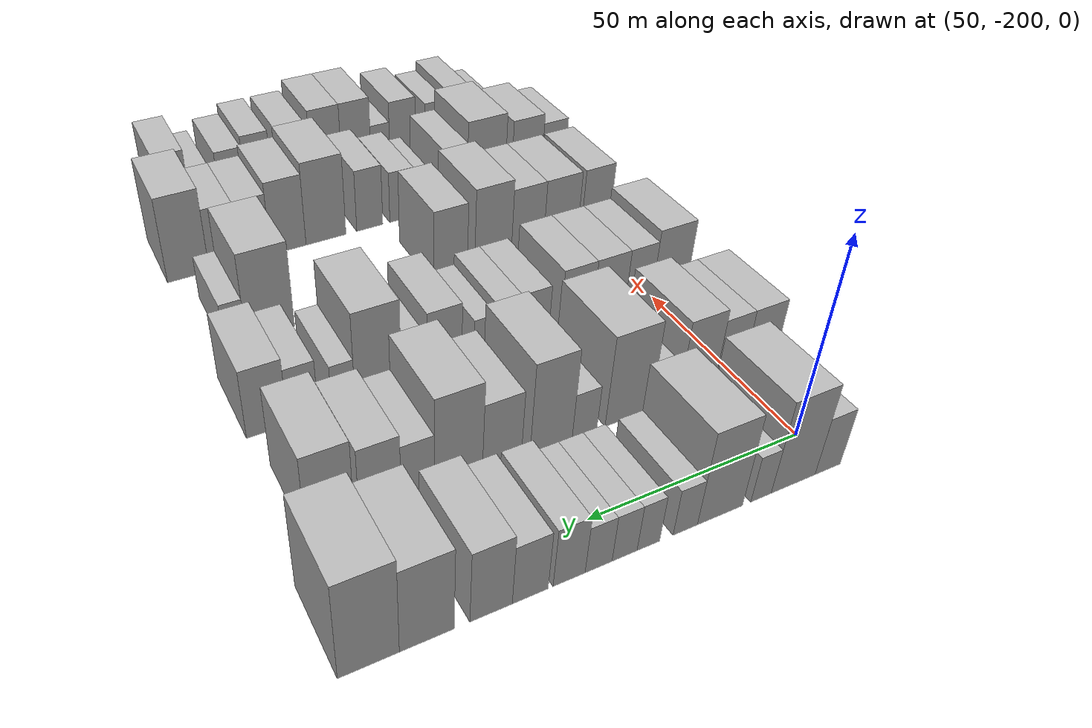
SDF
<sdf version="1.6">
 <world name="default">
  <model name="building_38">
   <static>1</static>
   <pose>50.0000 -199.1488 0 0.000000 0.000000 0.000000</pose>
   <link name="link">
    <pose>0 0 7.50 0 0 0</pose>
    <collision name="collision"><geometry><box><size>20.0000 6.4429 15.0000</size></box></geometry></collision>
    <visual name="visual">
     <cast_shadows>0</cast_shadows>
     <geometry><box><size>20.0000 6.4429 15.0000</size></box></geometry>
     <material>
      <script>
       <uri>model://HANNAS_wall/materials/scripts</uri>
       <uri>model://HANNAS_wall/materials/textures</uri>
       <name>vrc/HANNAS_wall</name>
      </script>
     </material>
    </visual>
   </link>
  </model>
  <model name="building_39">
   <static>1</static>
   <pose>50.0000 -190.4903 0 0.000000 0.000000 0.000000</pose>
   <link name="link">
    <pose>0 0 12.00 0 0 0</pose>
    <collision name="collision"><geometry><box><size>20.0000 10.8740 24.0000</size></box></geometry></collision>
    <visual name="visual">
     <cast_shadows>0</cast_shadows>
     <geometry><box><size>20.0000 10.8740 24.0000</size></box></geometry>
     <material>
      <script>
       <uri>model://HANNAS_wall/materials/scripts</uri>
       <uri>model://HANNAS_wall/materials/textures</uri>
       <name>vrc/HANNAS_wall</name>
      </script>
     </material>
    </visual>
   </link>
  </model>
  <model name="building_40">
   <static>1</static>
   <pose>50.0000 -182.5998 0 0.000000 0.000000 0.000000</pose>
   <link name="link">
    <pose>0 0 6.00 0 0 0</pose>
    <collision name="collision"><geometry><box><size>20.0000 4.9071 12.0000</size></box></geometry></collision>
    <visual name="visual">
     <cast_shadows>0</cast_shadows>
     <geometry><box><size>20.0000 4.9071 12.0000</size></box></geometry>
     <material>
      <script>
       <uri>model://HANNAS_wall/materials/scripts</uri>
       <uri>model://HANNAS_wall/materials/textures</uri>
       <name>vrc/HANNAS_wall</name>
      </script>
     </material>
    </visual>
   </link>
  </model>
  <model name="building_41">
   <static>1</static>
   <pose>50.0000 -172.8865 0 0.000000 0.000000 0.000000</pose>
   <link name="link">
    <pose>0 0 12.00 0 0 0</pose>
    <collision name="collision"><geometry><box><size>20.0000 10.5195 24.0000</size></box></geometry></collision>
    <visual name="visual">
     <cast_shadows>0</cast_shadows>
     <geometry><box><size>20.0000 10.5195 24.0000</size></box></geometry>
     <material>
      <script>
       <uri>model://HANNAS_wall/materials/scripts</uri>
       <uri>model://HANNAS_wall/materials/textures</uri>
       <name>vrc/HANNAS_wall</name>
      </script>
     </material>
    </visual>
   </link>
  </model>
  <model name="building_42">
   <static>1</static>
   <pose>50.0000 -164.8700 0 0.000000 0.000000 0.000000</pose>
   <link name="link">
    <pose>0 0 6.00 0 0 0</pose>
    <collision name="collision"><geometry><box><size>20.0000 5.5135 12.0000</size></box></geometry></collision>
    <visual name="visual">
     <cast_shadows>0</cast_shadows>
     <geometry><box><size>20.0000 5.5135 12.0000</size></box></geometry>
     <material>
      <script>
       <uri>model://HANNAS_wall/materials/scripts</uri>
       <uri>model://HANNAS_wall/materials/textures</uri>
       <name>vrc/HANNAS_wall</name>
      </script>
     </material>
    </visual>
   </link>
  </model>
  <model name="building_43">
   <static>1</static>
   <pose>50.0000 -156.6176 0 0.000000 0.000000 0.000000</pose>
   <link name="link">
    <pose>0 0 6.00 0 0 0</pose>
    <collision name="collision"><geometry><box><size>20.0000 4.9913 12.0000</size></box></geometry></collision>
    <visual name="visual">
     <cast_shadows>0</cast_shadows>
     <geometry><box><size>20.0000 4.9913 12.0000</size></box></geometry>
     <material>
      <script>
       <uri>model://HANNAS_wall/materials/scripts</uri>
       <uri>model://HANNAS_wall/materials/textures</uri>
       <name>vrc/HANNAS_wall</name>
      </script>
     </material>
    </visual>
   </link>
  </model>
  <model name="building_44">
   <static>1</static>
   <pose>50.0000 -151.4181 0 0.000000 0.000000 0.000000</pose>
   <link name="link">
    <pose>0 0 6.00 0 0 0</pose>
    <collision name="collision"><geometry><box><size>20.0000 5.4078 12.0000</size></box></geometry></collision>
    <visual name="visual">
     <cast_shadows>0</cast_shadows>
     <geometry><box><size>20.0000 5.4078 12.0000</size></box></geometry>
     <material>
      <script>
       <uri>model://HANNAS_wall/materials/scripts</uri>
       <uri>model://HANNAS_wall/materials/textures</uri>
       <name>vrc/HANNAS_wall</name>
      </script>
     </material>
    </visual>
   </link>
  </model>
  <model name="building_45">
   <static>1</static>
   <pose>50.0000 -145.8629 0 0.000000 0.000000 0.000000</pose>
   <link name="link">
    <pose>0 0 6.00 0 0 0</pose>
    <collision name="collision"><geometry><box><size>20.0000 5.7026 12.0000</size></box></geometry></collision>
    <visual name="visual">
     <cast_shadows>0</cast_shadows>
     <geometry><box><size>20.0000 5.7026 12.0000</size></box></geometry>
     <material>
      <script>
       <uri>model://HANNAS_wall/materials/scripts</uri>
       <uri>model://HANNAS_wall/materials/textures</uri>
       <name>vrc/HANNAS_wall</name>
      </script>
     </material>
    </visual>
   </link>
  </model>
  <model name="building_46">
   <static>1</static>
   <pose>50.0000 -139.6931 0 0.000000 0.000000 0.000000</pose>
   <link name="link">
    <pose>0 0 7.50 0 0 0</pose>
    <collision name="collision"><geometry><box><size>20.0000 6.6368 15.0000</size></box></geometry></collision>
    <visual name="visual">
     <cast_shadows>0</cast_shadows>
     <geometry><box><size>20.0000 6.6368 15.0000</size></box></geometry>
     <material>
      <script>
       <uri>model://HANNAS_wall/materials/scripts</uri>
       <uri>model://HANNAS_wall/materials/textures</uri>
       <name>vrc/HANNAS_wall</name>
      </script>
     </material>
    </visual>
   </link>
  </model>
  <model name="building_47">
   <static>1</static>
   <pose>50.0000 -131.7682 0 0.000000 0.000000 0.000000</pose>
   <link name="link">
    <pose>0 0 7.50 0 0 0</pose>
    <collision name="collision"><geometry><box><size>20.0000 7.2129 15.0000</size></box></geometry></collision>
    <visual name="visual">
     <cast_shadows>0</cast_shadows>
     <geometry><box><size>20.0000 7.2129 15.0000</size></box></geometry>
     <material>
      <script>
       <uri>model://HANNAS_wall/materials/scripts</uri>
       <uri>model://HANNAS_wall/materials/textures</uri>
       <name>vrc/HANNAS_wall</name>
      </script>
     </material>
    </visual>
   </link>
  </model>
  <model name="building_48">
   <static>1</static>
   <pose>50.0000 -124.0262 0 0.000000 0.000000 0.000000</pose>
   <link name="link">
    <pose>0 0 9.00 0 0 0</pose>
    <collision name="collision"><geometry><box><size>20.0000 8.2712 18.0000</size></box></geometry></collision>
    <visual name="visual">
     <cast_shadows>0</cast_shadows>
     <geometry><box><size>20.0000 8.2712 18.0000</size></box></geometry>
     <material>
      <script>
       <uri>model://HANNAS_wall/materials/scripts</uri>
       <uri>model://HANNAS_wall/materials/textures</uri>
       <name>vrc/HANNAS_wall</name>
      </script>
     </material>
    </visual>
   </link>
  </model>
  <model name="building_49">
   <static>1</static>
   <pose>50.0000 -111.7854 0 0.000000 0.000000 0.000000</pose>
   <link name="link">
    <pose>0 0 10.50 0 0 0</pose>
    <collision name="collision"><geometry><box><size>20.0000 10.2104 21.0000</size></box></geometry></collision>
    <visual name="visual">
     <cast_shadows>0</cast_shadows>
     <geometry><box><size>20.0000 10.2104 21.0000</size></box></geometry>
     <material>
      <script>
       <uri>model://HANNAS_wall/materials/scripts</uri>
       <uri>model://HANNAS_wall/materials/textures</uri>
       <name>vrc/HANNAS_wall</name>
      </script>
     </material>
    </visual>
   </link>
  </model>
  <model name="building_50">
   <static>1</static>
   <pose>50.0000 -101.1382 0 0.000000 0.000000 0.000000</pose>
   <link name="link">
    <pose>0 0 12.00 0 0 0</pose>
    <collision name="collision"><geometry><box><size>20.0000 11.0839 24.0000</size></box></geometry></collision>
    <visual name="visual">
     <cast_shadows>0</cast_shadows>
     <geometry><box><size>20.0000 11.0839 24.0000</size></box></geometry>
     <material>
      <script>
       <uri>model://HANNAS_wall/materials/scripts</uri>
       <uri>model://HANNAS_wall/materials/textures</uri>
       <name>vrc/HANNAS_wall</name>
      </script>
     </material>
    </visual>
   </link>
  </model>
  <model name="building_153">
   <static>1</static>
   <pose>79.0000 -205.8811 0 0.000000 0.000000 0.000000</pose>
   <link name="link">
    <pose>0 0 9.00 0 0 0</pose>
    <collision name="collision"><geometry><box><size>20.0000 8.6279 18.0000</size></box></geometry></collision>
    <visual name="visual">
     <cast_shadows>0</cast_shadows>
     <geometry><box><size>20.0000 8.6279 18.0000</size></box></geometry>
     <material>
      <script>
       <uri>model://HANNAS_wall/materials/scripts</uri>
       <uri>model://HANNAS_wall/materials/textures</uri>
       <name>vrc/HANNAS_wall</name>
      </script>
     </material>
    </visual>
   </link>
  </model>
  <model name="building_154">
   <static>1</static>
   <pose>79.0000 -197.7872 0 0.000000 0.000000 0.000000</pose>
   <link name="link">
    <pose>0 0 9.00 0 0 0</pose>
    <collision name="collision"><geometry><box><size>20.0000 7.5600 18.0000</size></box></geometry></collision>
    <visual name="visual">
     <cast_shadows>0</cast_shadows>
     <geometry><box><size>20.0000 7.5600 18.0000</size></box></geometry>
     <material>
      <script>
       <uri>model://HANNAS_wall/materials/scripts</uri>
       <uri>model://HANNAS_wall/materials/textures</uri>
       <name>vrc/HANNAS_wall</name>
      </script>
     </material>
    </visual>
   </link>
  </model>
  <model name="building_155">
   <static>1</static>
   <pose>79.0000 -189.3636 0 0.000000 0.000000 0.000000</pose>
   <link name="link">
    <pose>0 0 10.50 0 0 0</pose>
    <collision name="collision"><geometry><box><size>20.0000 9.2873 21.0000</size></box></geometry></collision>
    <visual name="visual">
     <cast_shadows>0</cast_shadows>
     <geometry><box><size>20.0000 9.2873 21.0000</size></box></geometry>
     <material>
      <script>
       <uri>model://HANNAS_wall/materials/scripts</uri>
       <uri>model://HANNAS_wall/materials/textures</uri>
       <name>vrc/HANNAS_wall</name>
      </script>
     </material>
    </visual>
   </link>
  </model>
  <model name="building_156">
   <static>1</static>
   <pose>79.0000 -180.1492 0 0.000000 0.000000 0.000000</pose>
   <link name="link">
    <pose>0 0 6.00 0 0 0</pose>
    <collision name="collision"><geometry><box><size>20.0000 5.1415 12.0000</size></box></geometry></collision>
    <visual name="visual">
     <cast_shadows>0</cast_shadows>
     <geometry><box><size>20.0000 5.1415 12.0000</size></box></geometry>
     <material>
      <script>
       <uri>model://HANNAS_wall/materials/scripts</uri>
       <uri>model://HANNAS_wall/materials/textures</uri>
       <name>vrc/HANNAS_wall</name>
      </script>
     </material>
    </visual>
   </link>
  </model>
  <model name="building_157">
   <static>1</static>
   <pose>79.0000 -171.9272 0 0.000000 0.000000 0.000000</pose>
   <link name="link">
    <pose>0 0 12.00 0 0 0</pose>
    <collision name="collision"><geometry><box><size>20.0000 11.3025 24.0000</size></box></geometry></collision>
    <visual name="visual">
     <cast_shadows>0</cast_shadows>
     <geometry><box><size>20.0000 11.3025 24.0000</size></box></geometry>
     <material>
      <script>
       <uri>model://HANNAS_wall/materials/scripts</uri>
       <uri>model://HANNAS_wall/materials/textures</uri>
       <name>vrc/HANNAS_wall</name>
      </script>
     </material>
    </visual>
   </link>
  </model>
  <model name="building_158">
   <static>1</static>
   <pose>79.0000 -161.3121 0 0.000000 0.000000 0.000000</pose>
   <link name="link">
    <pose>0 0 6.00 0 0 0</pose>
    <collision name="collision"><geometry><box><size>20.0000 5.9277 12.0000</size></box></geometry></collision>
    <visual name="visual">
     <cast_shadows>0</cast_shadows>
     <geometry><box><size>20.0000 5.9277 12.0000</size></box></geometry>
     <material>
      <script>
       <uri>model://HANNAS_wall/materials/scripts</uri>
       <uri>model://HANNAS_wall/materials/textures</uri>
       <name>vrc/HANNAS_wall</name>
      </script>
     </material>
    </visual>
   </link>
  </model>
  <model name="building_159">
   <static>1</static>
   <pose>79.0000 -153.4284 0 0.000000 0.000000 0.000000</pose>
   <link name="link">
    <pose>0 0 12.00 0 0 0</pose>
    <collision name="collision"><geometry><box><size>20.0000 9.8397 24.0000</size></box></geometry></collision>
    <visual name="visual">
     <cast_shadows>0</cast_shadows>
     <geometry><box><size>20.0000 9.8397 24.0000</size></box></geometry>
     <material>
      <script>
       <uri>model://HANNAS_wall/materials/scripts</uri>
       <uri>model://HANNAS_wall/materials/textures</uri>
       <name>vrc/HANNAS_wall</name>
      </script>
     </material>
    </visual>
   </link>
  </model>
  <model name="building_160">
   <static>1</static>
   <pose>79.0000 -142.1268 0 0.000000 0.000000 0.000000</pose>
   <link name="link">
    <pose>0 0 9.00 0 0 0</pose>
    <collision name="collision"><geometry><box><size>20.0000 8.7634 18.0000</size></box></geometry></collision>
    <visual name="visual">
     <cast_shadows>0</cast_shadows>
     <geometry><box><size>20.0000 8.7634 18.0000</size></box></geometry>
     <material>
      <script>
       <uri>model://HANNAS_wall/materials/scripts</uri>
       <uri>model://HANNAS_wall/materials/textures</uri>
       <name>vrc/HANNAS_wall</name>
      </script>
     </material>
    </visual>
   </link>
  </model>
  <model name="building_161">
   <static>1</static>
   <pose>79.0000 -132.5017 0 0.000000 0.000000 0.000000</pose>
   <link name="link">
    <pose>0 0 12.00 0 0 0</pose>
    <collision name="collision"><geometry><box><size>20.0000 10.4868 24.0000</size></box></geometry></collision>
    <visual name="visual">
     <cast_shadows>0</cast_shadows>
     <geometry><box><size>20.0000 10.4868 24.0000</size></box></geometry>
     <material>
      <script>
       <uri>model://HANNAS_wall/materials/scripts</uri>
       <uri>model://HANNAS_wall/materials/textures</uri>
       <name>vrc/HANNAS_wall</name>
      </script>
     </material>
    </visual>
   </link>
  </model>
  <model name="building_162">
   <static>1</static>
   <pose>79.0000 -123.7773 0 0.000000 0.000000 0.000000</pose>
   <link name="link">
    <pose>0 0 7.50 0 0 0</pose>
    <collision name="collision"><geometry><box><size>20.0000 6.9619 15.0000</size></box></geometry></collision>
    <visual name="visual">
     <cast_shadows>0</cast_shadows>
     <geometry><box><size>20.0000 6.9619 15.0000</size></box></geometry>
     <material>
      <script>
       <uri>model://HANNAS_wall/materials/scripts</uri>
       <uri>model://HANNAS_wall/materials/textures</uri>
       <name>vrc/HANNAS_wall</name>
      </script>
     </material>
    </visual>
   </link>
  </model>
  <model name="building_163">
   <static>1</static>
   <pose>79.0000 -115.9823 0 0.000000 0.000000 0.000000</pose>
   <link name="link">
    <pose>0 0 9.00 0 0 0</pose>
    <collision name="collision"><geometry><box><size>20.0000 8.6282 18.0000</size></box></geometry></collision>
    <visual name="visual">
     <cast_shadows>0</cast_shadows>
     <geometry><box><size>20.0000 8.6282 18.0000</size></box></geometry>
     <material>
      <script>
       <uri>model://HANNAS_wall/materials/scripts</uri>
       <uri>model://HANNAS_wall/materials/textures</uri>
       <name>vrc/HANNAS_wall</name>
      </script>
     </material>
    </visual>
   </link>
  </model>
  <model name="building_164">
   <static>1</static>
   <pose>79.0000 -105.8592 0 0.000000 0.000000 0.000000</pose>
   <link name="link">
    <pose>0 0 10.50 0 0 0</pose>
    <collision name="collision"><geometry><box><size>20.0000 9.6179 21.0000</size></box></geometry></collision>
    <visual name="visual">
     <cast_shadows>0</cast_shadows>
     <geometry><box><size>20.0000 9.6179 21.0000</size></box></geometry>
     <material>
      <script>
       <uri>model://HANNAS_wall/materials/scripts</uri>
       <uri>model://HANNAS_wall/materials/textures</uri>
       <name>vrc/HANNAS_wall</name>
      </script>
     </material>
    </visual>
   </link>
  </model>
  <model name="building_272">
   <static>1</static>
   <pose>108.0000 -203.0381 0 0.000000 0.000000 0.000000</pose>
   <link name="link">
    <pose>0 0 10.50 0 0 0</pose>
    <collision name="collision"><geometry><box><size>20.0000 10.0669 21.0000</size></box></geometry></collision>
    <visual name="visual">
     <cast_shadows>0</cast_shadows>
     <geometry><box><size>20.0000 10.0669 21.0000</size></box></geometry>
     <material>
      <script>
       <uri>model://HANNAS_wall/materials/scripts</uri>
       <uri>model://HANNAS_wall/materials/textures</uri>
       <name>vrc/HANNAS_wall</name>
      </script>
     </material>
    </visual>
   </link>
  </model>
  <model name="building_273">
   <static>1</static>
   <pose>108.0000 -194.2651 0 0.000000 0.000000 0.000000</pose>
   <link name="link">
    <pose>0 0 9.00 0 0 0</pose>
    <collision name="collision"><geometry><box><size>20.0000 7.4793 18.0000</size></box></geometry></collision>
    <visual name="visual">
     <cast_shadows>0</cast_shadows>
     <geometry><box><size>20.0000 7.4793 18.0000</size></box></geometry>
     <material>
      <script>
       <uri>model://HANNAS_wall/materials/scripts</uri>
       <uri>model://HANNAS_wall/materials/textures</uri>
       <name>vrc/HANNAS_wall</name>
      </script>
     </material>
    </visual>
   </link>
  </model>
  <model name="building_274">
   <static>1</static>
   <pose>108.0000 -186.1078 0 0.000000 0.000000 0.000000</pose>
   <link name="link">
    <pose>0 0 9.00 0 0 0</pose>
    <collision name="collision"><geometry><box><size>20.0000 8.8353 18.0000</size></box></geometry></collision>
    <visual name="visual">
     <cast_shadows>0</cast_shadows>
     <geometry><box><size>20.0000 8.8353 18.0000</size></box></geometry>
     <material>
      <script>
       <uri>model://HANNAS_wall/materials/scripts</uri>
       <uri>model://HANNAS_wall/materials/textures</uri>
       <name>vrc/HANNAS_wall</name>
      </script>
     </material>
    </visual>
   </link>
  </model>
  <model name="building_275">
   <static>1</static>
   <pose>108.0000 -177.3965 0 0.000000 0.000000 0.000000</pose>
   <link name="link">
    <pose>0 0 9.00 0 0 0</pose>
    <collision name="collision"><geometry><box><size>20.0000 8.5873 18.0000</size></box></geometry></collision>
    <visual name="visual">
     <cast_shadows>0</cast_shadows>
     <geometry><box><size>20.0000 8.5873 18.0000</size></box></geometry>
     <material>
      <script>
       <uri>model://HANNAS_wall/materials/scripts</uri>
       <uri>model://HANNAS_wall/materials/textures</uri>
       <name>vrc/HANNAS_wall</name>
      </script>
     </material>
    </visual>
   </link>
  </model>
  <model name="building_276">
   <static>1</static>
   <pose>108.0000 -166.4134 0 0.000000 0.000000 0.000000</pose>
   <link name="link">
    <pose>0 0 7.50 0 0 0</pose>
    <collision name="collision"><geometry><box><size>20.0000 7.3789 15.0000</size></box></geometry></collision>
    <visual name="visual">
     <cast_shadows>0</cast_shadows>
     <geometry><box><size>20.0000 7.3789 15.0000</size></box></geometry>
     <material>
      <script>
       <uri>model://HANNAS_wall/materials/scripts</uri>
       <uri>model://HANNAS_wall/materials/textures</uri>
       <name>vrc/HANNAS_wall</name>
      </script>
     </material>
    </visual>
   </link>
  </model>
  <model name="building_277">
   <static>1</static>
   <pose>108.0000 -159.4649 0 0.000000 0.000000 0.000000</pose>
   <link name="link">
    <pose>0 0 7.50 0 0 0</pose>
    <collision name="collision"><geometry><box><size>20.0000 6.5182 15.0000</size></box></geometry></collision>
    <visual name="visual">
     <cast_shadows>0</cast_shadows>
     <geometry><box><size>20.0000 6.5182 15.0000</size></box></geometry>
     <material>
      <script>
       <uri>model://HANNAS_wall/materials/scripts</uri>
       <uri>model://HANNAS_wall/materials/textures</uri>
       <name>vrc/HANNAS_wall</name>
      </script>
     </material>
    </visual>
   </link>
  </model>
  <model name="building_278">
   <static>1</static>
   <pose>108.0000 -153.6231 0 0.000000 0.000000 0.000000</pose>
   <link name="link">
    <pose>0 0 6.00 0 0 0</pose>
    <collision name="collision"><geometry><box><size>20.0000 5.1654 12.0000</size></box></geometry></collision>
    <visual name="visual">
     <cast_shadows>0</cast_shadows>
     <geometry><box><size>20.0000 5.1654 12.0000</size></box></geometry>
     <material>
      <script>
       <uri>model://HANNAS_wall/materials/scripts</uri>
       <uri>model://HANNAS_wall/materials/textures</uri>
       <name>vrc/HANNAS_wall</name>
      </script>
     </material>
    </visual>
   </link>
  </model>
  <model name="building_279">
   <static>1</static>
   <pose>108.0000 -143.8911 0 0.000000 0.000000 0.000000</pose>
   <link name="link">
    <pose>0 0 9.00 0 0 0</pose>
    <collision name="collision"><geometry><box><size>20.0000 8.2987 18.0000</size></box></geometry></collision>
    <visual name="visual">
     <cast_shadows>0</cast_shadows>
     <geometry><box><size>20.0000 8.2987 18.0000</size></box></geometry>
     <material>
      <script>
       <uri>model://HANNAS_wall/materials/scripts</uri>
       <uri>model://HANNAS_wall/materials/textures</uri>
       <name>vrc/HANNAS_wall</name>
      </script>
     </material>
    </visual>
   </link>
  </model>
  <model name="building_280">
   <static>1</static>
   <pose>108.0000 -137.1686 0 0.000000 0.000000 0.000000</pose>
   <link name="link">
    <pose>0 0 6.00 0 0 0</pose>
    <collision name="collision"><geometry><box><size>20.0000 5.1462 12.0000</size></box></geometry></collision>
    <visual name="visual">
     <cast_shadows>0</cast_shadows>
     <geometry><box><size>20.0000 5.1462 12.0000</size></box></geometry>
     <material>
      <script>
       <uri>model://HANNAS_wall/materials/scripts</uri>
       <uri>model://HANNAS_wall/materials/textures</uri>
       <name>vrc/HANNAS_wall</name>
      </script>
     </material>
    </visual>
   </link>
  </model>
  <model name="building_281">
   <static>1</static>
   <pose>108.0000 -128.2595 0 0.000000 0.000000 0.000000</pose>
   <link name="link">
    <pose>0 0 12.00 0 0 0</pose>
    <collision name="collision"><geometry><box><size>20.0000 10.6720 24.0000</size></box></geometry></collision>
    <visual name="visual">
     <cast_shadows>0</cast_shadows>
     <geometry><box><size>20.0000 10.6720 24.0000</size></box></geometry>
     <material>
      <script>
       <uri>model://HANNAS_wall/materials/scripts</uri>
       <uri>model://HANNAS_wall/materials/textures</uri>
       <name>vrc/HANNAS_wall</name>
      </script>
     </material>
    </visual>
   </link>
  </model>
  <model name="building_282">
   <static>1</static>
   <pose>108.0000 -120.2953 0 0.000000 0.000000 0.000000</pose>
   <link name="link">
    <pose>0 0 6.00 0 0 0</pose>
    <collision name="collision"><geometry><box><size>20.0000 5.2565 12.0000</size></box></geometry></collision>
    <visual name="visual">
     <cast_shadows>0</cast_shadows>
     <geometry><box><size>20.0000 5.2565 12.0000</size></box></geometry>
     <material>
      <script>
       <uri>model://HANNAS_wall/materials/scripts</uri>
       <uri>model://HANNAS_wall/materials/textures</uri>
       <name>vrc/HANNAS_wall</name>
      </script>
     </material>
    </visual>
   </link>
  </model>
  <model name="building_283">
   <static>1</static>
   <pose>108.0000 -111.3072 0 0.000000 0.000000 0.000000</pose>
   <link name="link">
    <pose>0 0 7.50 0 0 0</pose>
    <collision name="collision"><geometry><box><size>20.0000 6.7196 15.0000</size></box></geometry></collision>
    <visual name="visual">
     <cast_shadows>0</cast_shadows>
     <geometry><box><size>20.0000 6.7196 15.0000</size></box></geometry>
     <material>
      <script>
       <uri>model://HANNAS_wall/materials/scripts</uri>
       <uri>model://HANNAS_wall/materials/textures</uri>
       <name>vrc/HANNAS_wall</name>
      </script>
     </material>
    </visual>
   </link>
  </model>
  <model name="building_284">
   <static>1</static>
   <pose>108.0000 -103.5180 0 0.000000 0.000000 0.000000</pose>
   <link name="link">
    <pose>0 0 9.00 0 0 0</pose>
    <collision name="collision"><geometry><box><size>20.0000 8.8589 18.0000</size></box></geometry></collision>
    <visual name="visual">
     <cast_shadows>0</cast_shadows>
     <geometry><box><size>20.0000 8.8589 18.0000</size></box></geometry>
     <material>
      <script>
       <uri>model://HANNAS_wall/materials/scripts</uri>
       <uri>model://HANNAS_wall/materials/textures</uri>
       <name>vrc/HANNAS_wall</name>
      </script>
     </material>
    </visual>
   </link>
  </model>
  <model name="building_390">
   <static>1</static>
   <pose>137.0000 -201.0531 0 0.000000 0.000000 0.000000</pose>
   <link name="link">
    <pose>0 0 10.50 0 0 0</pose>
    <collision name="collision"><geometry><box><size>20.0000 8.5564 21.0000</size></box></geometry></collision>
    <visual name="visual">
     <cast_shadows>0</cast_shadows>
     <geometry><box><size>20.0000 8.5564 21.0000</size></box></geometry>
     <material>
      <script>
       <uri>model://HANNAS_wall/materials/scripts</uri>
       <uri>model://HANNAS_wall/materials/textures</uri>
       <name>vrc/HANNAS_wall</name>
      </script>
     </material>
    </visual>
   </link>
  </model>
  <model name="building_391">
   <static>1</static>
   <pose>137.0000 -190.7907 0 0.000000 0.000000 0.000000</pose>
   <link name="link">
    <pose>0 0 10.50 0 0 0</pose>
    <collision name="collision"><geometry><box><size>20.0000 9.9683 21.0000</size></box></geometry></collision>
    <visual name="visual">
     <cast_shadows>0</cast_shadows>
     <geometry><box><size>20.0000 9.9683 21.0000</size></box></geometry>
     <material>
      <script>
       <uri>model://HANNAS_wall/materials/scripts</uri>
       <uri>model://HANNAS_wall/materials/textures</uri>
       <name>vrc/HANNAS_wall</name>
      </script>
     </material>
    </visual>
   </link>
  </model>
  <model name="building_392">
   <static>1</static>
   <pose>137.0000 -181.2354 0 0.000000 0.000000 0.000000</pose>
   <link name="link">
    <pose>0 0 10.50 0 0 0</pose>
    <collision name="collision"><geometry><box><size>20.0000 9.1424 21.0000</size></box></geometry></collision>
    <visual name="visual">
     <cast_shadows>0</cast_shadows>
     <geometry><box><size>20.0000 9.1424 21.0000</size></box></geometry>
     <material>
      <script>
       <uri>model://HANNAS_wall/materials/scripts</uri>
       <uri>model://HANNAS_wall/materials/textures</uri>
       <name>vrc/HANNAS_wall</name>
      </script>
     </material>
    </visual>
   </link>
  </model>
  <model name="building_393">
   <static>1</static>
   <pose>137.0000 -171.5742 0 0.000000 0.000000 0.000000</pose>
   <link name="link">
    <pose>0 0 12.00 0 0 0</pose>
    <collision name="collision"><geometry><box><size>20.0000 10.1800 24.0000</size></box></geometry></collision>
    <visual name="visual">
     <cast_shadows>0</cast_shadows>
     <geometry><box><size>20.0000 10.1800 24.0000</size></box></geometry>
     <material>
      <script>
       <uri>model://HANNAS_wall/materials/scripts</uri>
       <uri>model://HANNAS_wall/materials/textures</uri>
       <name>vrc/HANNAS_wall</name>
      </script>
     </material>
    </visual>
   </link>
  </model>
  <model name="building_394">
   <static>1</static>
   <pose>137.0000 -159.9934 0 0.000000 0.000000 0.000000</pose>
   <link name="link">
    <pose>0 0 10.50 0 0 0</pose>
    <collision name="collision"><geometry><box><size>20.0000 8.9818 21.0000</size></box></geometry></collision>
    <visual name="visual">
     <cast_shadows>0</cast_shadows>
     <geometry><box><size>20.0000 8.9818 21.0000</size></box></geometry>
     <material>
      <script>
       <uri>model://HANNAS_wall/materials/scripts</uri>
       <uri>model://HANNAS_wall/materials/textures</uri>
       <name>vrc/HANNAS_wall</name>
      </script>
     </material>
    </visual>
   </link>
  </model>
  <model name="building_395">
   <static>1</static>
   <pose>137.0000 -114.2364 0 0.000000 0.000000 0.000000</pose>
   <link name="link">
    <pose>0 0 12.00 0 0 0</pose>
    <collision name="collision"><geometry><box><size>20.0000 11.5107 24.0000</size></box></geometry></collision>
    <visual name="visual">
     <cast_shadows>0</cast_shadows>
     <geometry><box><size>20.0000 11.5107 24.0000</size></box></geometry>
     <material>
      <script>
       <uri>model://HANNAS_wall/materials/scripts</uri>
       <uri>model://HANNAS_wall/materials/textures</uri>
       <name>vrc/HANNAS_wall</name>
      </script>
     </material>
    </visual>
   </link>
  </model>
  <model name="building_396">
   <static>1</static>
   <pose>137.0000 -105.9049 0 0.000000 0.000000 0.000000</pose>
   <link name="link">
    <pose>0 0 6.00 0 0 0</pose>
    <collision name="collision"><geometry><box><size>20.0000 5.1525 12.0000</size></box></geometry></collision>
    <visual name="visual">
     <cast_shadows>0</cast_shadows>
     <geometry><box><size>20.0000 5.1525 12.0000</size></box></geometry>
     <material>
      <script>
       <uri>model://HANNAS_wall/materials/scripts</uri>
       <uri>model://HANNAS_wall/materials/textures</uri>
       <name>vrc/HANNAS_wall</name>
      </script>
     </material>
    </visual>
   </link>
  </model>
  <model name="building_499">
   <static>1</static>
   <pose>166.0000 -206.0840 0 0.000000 0.000000 0.000000</pose>
   <link name="link">
    <pose>0 0 9.00 0 0 0</pose>
    <collision name="collision"><geometry><box><size>20.0000 7.4459 18.0000</size></box></geometry></collision>
    <visual name="visual">
     <cast_shadows>0</cast_shadows>
     <geometry><box><size>20.0000 7.4459 18.0000</size></box></geometry>
     <material>
      <script>
       <uri>model://HANNAS_wall/materials/scripts</uri>
       <uri>model://HANNAS_wall/materials/textures</uri>
       <name>vrc/HANNAS_wall</name>
      </script>
     </material>
    </visual>
   </link>
  </model>
  <model name="building_500">
   <static>1</static>
   <pose>166.0000 -197.6569 0 0.000000 0.000000 0.000000</pose>
   <link name="link">
    <pose>0 0 10.50 0 0 0</pose>
    <collision name="collision"><geometry><box><size>20.0000 9.4083 21.0000</size></box></geometry></collision>
    <visual name="visual">
     <cast_shadows>0</cast_shadows>
     <geometry><box><size>20.0000 9.4083 21.0000</size></box></geometry>
     <material>
      <script>
       <uri>model://HANNAS_wall/materials/scripts</uri>
       <uri>model://HANNAS_wall/materials/textures</uri>
       <name>vrc/HANNAS_wall</name>
      </script>
     </material>
    </visual>
   </link>
  </model>
  <model name="building_501">
   <static>1</static>
   <pose>166.0000 -185.2022 0 0.000000 0.000000 0.000000</pose>
   <link name="link">
    <pose>0 0 12.00 0 0 0</pose>
    <collision name="collision"><geometry><box><size>20.0000 11.5012 24.0000</size></box></geometry></collision>
    <visual name="visual">
     <cast_shadows>0</cast_shadows>
     <geometry><box><size>20.0000 11.5012 24.0000</size></box></geometry>
     <material>
      <script>
       <uri>model://HANNAS_wall/materials/scripts</uri>
       <uri>model://HANNAS_wall/materials/textures</uri>
       <name>vrc/HANNAS_wall</name>
      </script>
     </material>
    </visual>
   </link>
  </model>
  <model name="building_502">
   <static>1</static>
   <pose>166.0000 -175.7952 0 0.000000 0.000000 0.000000</pose>
   <link name="link">
    <pose>0 0 9.00 0 0 0</pose>
    <collision name="collision"><geometry><box><size>20.0000 7.3129 18.0000</size></box></geometry></collision>
    <visual name="visual">
     <cast_shadows>0</cast_shadows>
     <geometry><box><size>20.0000 7.3129 18.0000</size></box></geometry>
     <material>
      <script>
       <uri>model://HANNAS_wall/materials/scripts</uri>
       <uri>model://HANNAS_wall/materials/textures</uri>
       <name>vrc/HANNAS_wall</name>
      </script>
     </material>
    </visual>
   </link>
  </model>
  <model name="building_503">
   <static>1</static>
   <pose>166.0000 -166.4554 0 0.000000 0.000000 0.000000</pose>
   <link name="link">
    <pose>0 0 6.00 0 0 0</pose>
    <collision name="collision"><geometry><box><size>20.0000 5.3667 12.0000</size></box></geometry></collision>
    <visual name="visual">
     <cast_shadows>0</cast_shadows>
     <geometry><box><size>20.0000 5.3667 12.0000</size></box></geometry>
     <material>
      <script>
       <uri>model://HANNAS_wall/materials/scripts</uri>
       <uri>model://HANNAS_wall/materials/textures</uri>
       <name>vrc/HANNAS_wall</name>
      </script>
     </material>
    </visual>
   </link>
  </model>
  <model name="building_504">
   <static>1</static>
   <pose>166.0000 -160.3027 0 0.000000 0.000000 0.000000</pose>
   <link name="link">
    <pose>0 0 7.50 0 0 0</pose>
    <collision name="collision"><geometry><box><size>20.0000 6.9386 15.0000</size></box></geometry></collision>
    <visual name="visual">
     <cast_shadows>0</cast_shadows>
     <geometry><box><size>20.0000 6.9386 15.0000</size></box></geometry>
     <material>
      <script>
       <uri>model://HANNAS_wall/materials/scripts</uri>
       <uri>model://HANNAS_wall/materials/textures</uri>
       <name>vrc/HANNAS_wall</name>
      </script>
     </material>
    </visual>
   </link>
  </model>
  <model name="building_505">
   <static>1</static>
   <pose>166.0000 -151.1762 0 0.000000 0.000000 0.000000</pose>
   <link name="link">
    <pose>0 0 9.00 0 0 0</pose>
    <collision name="collision"><geometry><box><size>20.0000 7.3146 18.0000</size></box></geometry></collision>
    <visual name="visual">
     <cast_shadows>0</cast_shadows>
     <geometry><box><size>20.0000 7.3146 18.0000</size></box></geometry>
     <material>
      <script>
       <uri>model://HANNAS_wall/materials/scripts</uri>
       <uri>model://HANNAS_wall/materials/textures</uri>
       <name>vrc/HANNAS_wall</name>
      </script>
     </material>
    </visual>
   </link>
  </model>
  <model name="building_506">
   <static>1</static>
   <pose>166.0000 -139.0762 0 0.000000 0.000000 0.000000</pose>
   <link name="link">
    <pose>0 0 12.00 0 0 0</pose>
    <collision name="collision"><geometry><box><size>20.0000 10.8853 24.0000</size></box></geometry></collision>
    <visual name="visual">
     <cast_shadows>0</cast_shadows>
     <geometry><box><size>20.0000 10.8853 24.0000</size></box></geometry>
     <material>
      <script>
       <uri>model://HANNAS_wall/materials/scripts</uri>
       <uri>model://HANNAS_wall/materials/textures</uri>
       <name>vrc/HANNAS_wall</name>
      </script>
     </material>
    </visual>
   </link>
  </model>
  <model name="building_507">
   <static>1</static>
   <pose>166.0000 -128.9311 0 0.000000 0.000000 0.000000</pose>
   <link name="link">
    <pose>0 0 10.50 0 0 0</pose>
    <collision name="collision"><geometry><box><size>20.0000 9.4050 21.0000</size></box></geometry></collision>
    <visual name="visual">
     <cast_shadows>0</cast_shadows>
     <geometry><box><size>20.0000 9.4050 21.0000</size></box></geometry>
     <material>
      <script>
       <uri>model://HANNAS_wall/materials/scripts</uri>
       <uri>model://HANNAS_wall/materials/textures</uri>
       <name>vrc/HANNAS_wall</name>
      </script>
     </material>
    </visual>
   </link>
  </model>
  <model name="building_508">
   <static>1</static>
   <pose>166.0000 -120.1648 0 0.000000 0.000000 0.000000</pose>
   <link name="link">
    <pose>0 0 9.00 0 0 0</pose>
    <collision name="collision"><geometry><box><size>20.0000 8.1277 18.0000</size></box></geometry></collision>
    <visual name="visual">
     <cast_shadows>0</cast_shadows>
     <geometry><box><size>20.0000 8.1277 18.0000</size></box></geometry>
     <material>
      <script>
       <uri>model://HANNAS_wall/materials/scripts</uri>
       <uri>model://HANNAS_wall/materials/textures</uri>
       <name>vrc/HANNAS_wall</name>
      </script>
     </material>
    </visual>
   </link>
  </model>
  <model name="building_509">
   <static>1</static>
   <pose>166.0000 -112.2872 0 0.000000 0.000000 0.000000</pose>
   <link name="link">
    <pose>0 0 9.00 0 0 0</pose>
    <collision name="collision"><geometry><box><size>20.0000 7.6275 18.0000</size></box></geometry></collision>
    <visual name="visual">
     <cast_shadows>0</cast_shadows>
     <geometry><box><size>20.0000 7.6275 18.0000</size></box></geometry>
     <material>
      <script>
       <uri>model://HANNAS_wall/materials/scripts</uri>
       <uri>model://HANNAS_wall/materials/textures</uri>
       <name>vrc/HANNAS_wall</name>
      </script>
     </material>
    </visual>
   </link>
  </model>
  <model name="building_510">
   <static>1</static>
   <pose>166.0000 -103.2792 0 0.000000 0.000000 0.000000</pose>
   <link name="link">
    <pose>0 0 12.00 0 0 0</pose>
    <collision name="collision"><geometry><box><size>20.0000 10.3886 24.0000</size></box></geometry></collision>
    <visual name="visual">
     <cast_shadows>0</cast_shadows>
     <geometry><box><size>20.0000 10.3886 24.0000</size></box></geometry>
     <material>
      <script>
       <uri>model://HANNAS_wall/materials/scripts</uri>
       <uri>model://HANNAS_wall/materials/textures</uri>
       <name>vrc/HANNAS_wall</name>
      </script>
     </material>
    </visual>
   </link>
  </model>
  <model name="building_613">
   <static>1</static>
   <pose>195.0000 -200.4236 0 0.000000 0.000000 0.000000</pose>
   <link name="link">
    <pose>0 0 6.00 0 0 0</pose>
    <collision name="collision"><geometry><box><size>20.0000 5.2888 12.0000</size></box></geometry></collision>
    <visual name="visual">
     <cast_shadows>0</cast_shadows>
     <geometry><box><size>20.0000 5.2888 12.0000</size></box></geometry>
     <material>
      <script>
       <uri>model://HANNAS_wall/materials/scripts</uri>
       <uri>model://HANNAS_wall/materials/textures</uri>
       <name>vrc/HANNAS_wall</name>
      </script>
     </material>
    </visual>
   </link>
  </model>
  <model name="building_614">
   <static>1</static>
   <pose>195.0000 -191.1409 0 0.000000 0.000000 0.000000</pose>
   <link name="link">
    <pose>0 0 9.00 0 0 0</pose>
    <collision name="collision"><geometry><box><size>20.0000 7.2767 18.0000</size></box></geometry></collision>
    <visual name="visual">
     <cast_shadows>0</cast_shadows>
     <geometry><box><size>20.0000 7.2767 18.0000</size></box></geometry>
     <material>
      <script>
       <uri>model://HANNAS_wall/materials/scripts</uri>
       <uri>model://HANNAS_wall/materials/textures</uri>
       <name>vrc/HANNAS_wall</name>
      </script>
     </material>
    </visual>
   </link>
  </model>
  <model name="building_615">
   <static>1</static>
   <pose>195.0000 -184.1945 0 0.000000 0.000000 0.000000</pose>
   <link name="link">
    <pose>0 0 7.50 0 0 0</pose>
    <collision name="collision"><geometry><box><size>20.0000 6.6161 15.0000</size></box></geometry></collision>
    <visual name="visual">
     <cast_shadows>0</cast_shadows>
     <geometry><box><size>20.0000 6.6161 15.0000</size></box></geometry>
     <material>
      <script>
       <uri>model://HANNAS_wall/materials/scripts</uri>
       <uri>model://HANNAS_wall/materials/textures</uri>
       <name>vrc/HANNAS_wall</name>
      </script>
     </material>
    </visual>
   </link>
  </model>
  <model name="building_616">
   <static>1</static>
   <pose>195.0000 -173.8579 0 0.000000 0.000000 0.000000</pose>
   <link name="link">
    <pose>0 0 9.00 0 0 0</pose>
    <collision name="collision"><geometry><box><size>20.0000 8.0570 18.0000</size></box></geometry></collision>
    <visual name="visual">
     <cast_shadows>0</cast_shadows>
     <geometry><box><size>20.0000 8.0570 18.0000</size></box></geometry>
     <material>
      <script>
       <uri>model://HANNAS_wall/materials/scripts</uri>
       <uri>model://HANNAS_wall/materials/textures</uri>
       <name>vrc/HANNAS_wall</name>
      </script>
     </material>
    </visual>
   </link>
  </model>
  <model name="building_617">
   <static>1</static>
   <pose>195.0000 -166.9399 0 0.000000 0.000000 0.000000</pose>
   <link name="link">
    <pose>0 0 6.00 0 0 0</pose>
    <collision name="collision"><geometry><box><size>20.0000 5.7789 12.0000</size></box></geometry></collision>
    <visual name="visual">
     <cast_shadows>0</cast_shadows>
     <geometry><box><size>20.0000 5.7789 12.0000</size></box></geometry>
     <material>
      <script>
       <uri>model://HANNAS_wall/materials/scripts</uri>
       <uri>model://HANNAS_wall/materials/textures</uri>
       <name>vrc/HANNAS_wall</name>
      </script>
     </material>
    </visual>
   </link>
  </model>
  <model name="building_618">
   <static>1</static>
   <pose>195.0000 -159.6038 0 0.000000 0.000000 0.000000</pose>
   <link name="link">
    <pose>0 0 10.50 0 0 0</pose>
    <collision name="collision"><geometry><box><size>20.0000 8.8932 21.0000</size></box></geometry></collision>
    <visual name="visual">
     <cast_shadows>0</cast_shadows>
     <geometry><box><size>20.0000 8.8932 21.0000</size></box></geometry>
     <material>
      <script>
       <uri>model://HANNAS_wall/materials/scripts</uri>
       <uri>model://HANNAS_wall/materials/textures</uri>
       <name>vrc/HANNAS_wall</name>
      </script>
     </material>
    </visual>
   </link>
  </model>
  <model name="building_619">
   <static>1</static>
   <pose>195.0000 -150.6627 0 0.000000 0.000000 0.000000</pose>
   <link name="link">
    <pose>0 0 10.50 0 0 0</pose>
    <collision name="collision"><geometry><box><size>20.0000 8.9891 21.0000</size></box></geometry></collision>
    <visual name="visual">
     <cast_shadows>0</cast_shadows>
     <geometry><box><size>20.0000 8.9891 21.0000</size></box></geometry>
     <material>
      <script>
       <uri>model://HANNAS_wall/materials/scripts</uri>
       <uri>model://HANNAS_wall/materials/textures</uri>
       <name>vrc/HANNAS_wall</name>
      </script>
     </material>
    </visual>
   </link>
  </model>
  <model name="building_620">
   <static>1</static>
   <pose>195.0000 -140.9894 0 0.000000 0.000000 0.000000</pose>
   <link name="link">
    <pose>0 0 9.00 0 0 0</pose>
    <collision name="collision"><geometry><box><size>20.0000 8.3575 18.0000</size></box></geometry></collision>
    <visual name="visual">
     <cast_shadows>0</cast_shadows>
     <geometry><box><size>20.0000 8.3575 18.0000</size></box></geometry>
     <material>
      <script>
       <uri>model://HANNAS_wall/materials/scripts</uri>
       <uri>model://HANNAS_wall/materials/textures</uri>
       <name>vrc/HANNAS_wall</name>
      </script>
     </material>
    </visual>
   </link>
  </model>
  <model name="building_621">
   <static>1</static>
   <pose>195.0000 -131.0563 0 0.000000 0.000000 0.000000</pose>
   <link name="link">
    <pose>0 0 9.00 0 0 0</pose>
    <collision name="collision"><geometry><box><size>20.0000 7.5086 18.0000</size></box></geometry></collision>
    <visual name="visual">
     <cast_shadows>0</cast_shadows>
     <geometry><box><size>20.0000 7.5086 18.0000</size></box></geometry>
     <material>
      <script>
       <uri>model://HANNAS_wall/materials/scripts</uri>
       <uri>model://HANNAS_wall/materials/textures</uri>
       <name>vrc/HANNAS_wall</name>
      </script>
     </material>
    </visual>
   </link>
  </model>
  <model name="building_622">
   <static>1</static>
   <pose>195.0000 -123.6525 0 0.000000 0.000000 0.000000</pose>
   <link name="link">
    <pose>0 0 7.50 0 0 0</pose>
    <collision name="collision"><geometry><box><size>20.0000 7.2990 15.0000</size></box></geometry></collision>
    <visual name="visual">
     <cast_shadows>0</cast_shadows>
     <geometry><box><size>20.0000 7.2990 15.0000</size></box></geometry>
     <material>
      <script>
       <uri>model://HANNAS_wall/materials/scripts</uri>
       <uri>model://HANNAS_wall/materials/textures</uri>
       <name>vrc/HANNAS_wall</name>
      </script>
     </material>
    </visual>
   </link>
  </model>
  <model name="building_623">
   <static>1</static>
   <pose>195.0000 -115.0808 0 0.000000 0.000000 0.000000</pose>
   <link name="link">
    <pose>0 0 6.00 0 0 0</pose>
    <collision name="collision"><geometry><box><size>20.0000 5.8444 12.0000</size></box></geometry></collision>
    <visual name="visual">
     <cast_shadows>0</cast_shadows>
     <geometry><box><size>20.0000 5.8444 12.0000</size></box></geometry>
     <material>
      <script>
       <uri>model://HANNAS_wall/materials/scripts</uri>
       <uri>model://HANNAS_wall/materials/textures</uri>
       <name>vrc/HANNAS_wall</name>
      </script>
     </material>
    </visual>
   </link>
  </model>
  <model name="building_624">
   <static>1</static>
   <pose>195.0000 -108.1072 0 0.000000 0.000000 0.000000</pose>
   <link name="link">
    <pose>0 0 9.00 0 0 0</pose>
    <collision name="collision"><geometry><box><size>20.0000 8.1028 18.0000</size></box></geometry></collision>
    <visual name="visual">
     <cast_shadows>0</cast_shadows>
     <geometry><box><size>20.0000 8.1028 18.0000</size></box></geometry>
     <material>
      <script>
       <uri>model://HANNAS_wall/materials/scripts</uri>
       <uri>model://HANNAS_wall/materials/textures</uri>
       <name>vrc/HANNAS_wall</name>
      </script>
     </material>
    </visual>
   </link>
  </model>
 </world>
</sdf>
